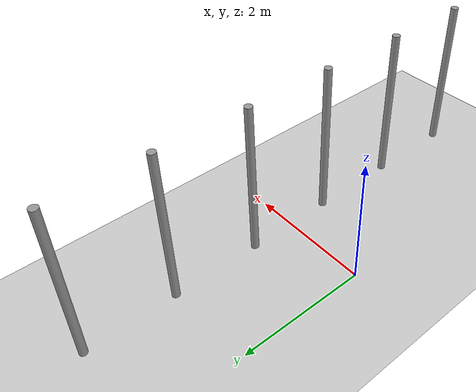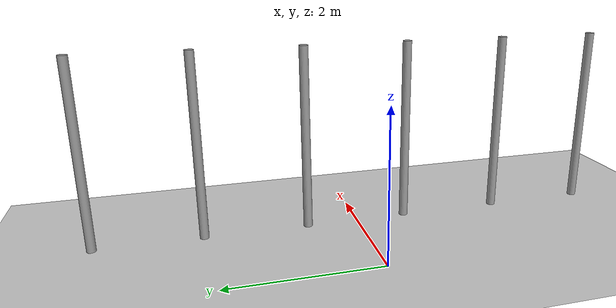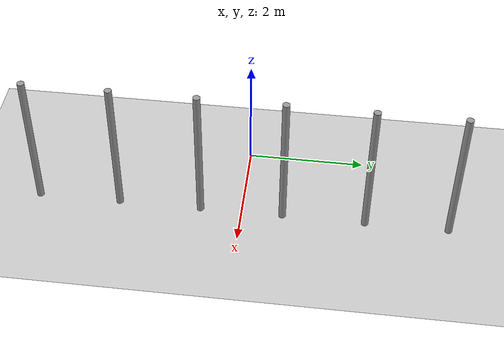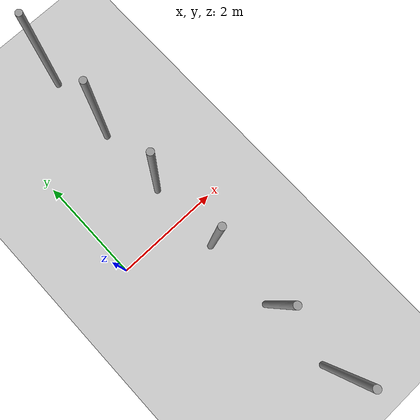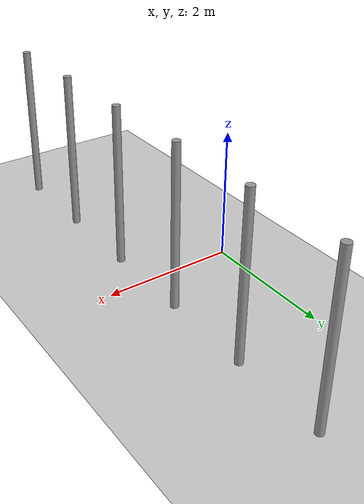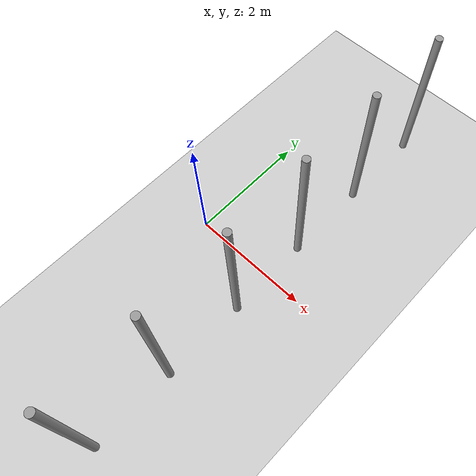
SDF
<sdf version="1.6">
 <world name="default">
  <light name="sun" type="directional">
   <pose>0 0 10 0 -0 0</pose>
   <diffuse>0.8 0.8 0.8 1</diffuse>
   <specular>0.2 0.2 0.2 1</specular>
   <attenuation>
    <range>1000</range>
    <constant>0.9</constant>
    <linear>0.01</linear>
    <quadratic>0.001</quadratic>
   </attenuation>
   <direction>-0.5 0.1 -0.9</direction>
  </light>
  <model name="ground_plane">
   <static>1</static>
   <link name="link">
    <collision name="collision">
     <geometry><plane><normal>0 0 1</normal><size>100 100</size></plane></geometry>
     <surface><friction><ode><mu>100</mu><mu2>50</mu2></ode></friction></surface>
    </collision>
    <visual name="visual">
     <cast_shadows>0</cast_shadows>
     <geometry><plane><normal>0 0 1</normal><size>100 100</size></plane></geometry>
     <material>
      <script><uri>file://media/materials/scripts/gazebo.material</uri><name>Gazebo/Grey</name></script>
     </material>
    </visual>
   </link>
  </model>
  <gravity>0 0 -9.8</gravity>
  <magnetic_field>6e-06 2.3e-05 -4.2e-05</magnetic_field>
  <atmosphere type="adiabatic"/>
  <physics name="default_physics" default="0" type="ode">
   <max_step_size>0.001</max_step_size>
   <real_time_factor>1</real_time_factor>
   <real_time_update_rate>1000</real_time_update_rate>
  </physics>
  <scene><ambient>0.4 0.4 0.4 1</ambient><background>0.7 0.7 0.7 1</background><shadows>1</shadows></scene>
  <spherical_coordinates>
   <surface_model>EARTH_WGS84</surface_model>
   <latitude_deg>0</latitude_deg>
   <longitude_deg>0</longitude_deg>
   <elevation>0</elevation>
   <heading_deg>0</heading_deg>
  </spherical_coordinates>
  <model name="pole">
   <link name="link_0">
    <inertial>
     <mass>0.0364582</mass>
     <inertia>
      <ixx>0.00312124</ixx>
      <ixy>0</ixy>
      <ixz>0</ixz>
      <iyy>0.00312124</iyy>
      <iyz>0</iyz>
      <izz>0.00016615</izz>
     </inertia>
    </inertial>
    <visual name="visual">
     <geometry><cylinder><radius>0.06</radius><length>2.5</length></cylinder></geometry>
     <material>
      <lighting>1</lighting>
      <script><uri>file://media/materials/scripts/gazebo.material</uri><name>Gazebo/Grey</name></script>
      <ambient>0.3 0.3 0.3 1</ambient>
      <diffuse>0.7 0.7 0.7 1</diffuse>
      <specular>0.01 0.01 0.01 1</specular>
      <emissive>0 0 0 1</emissive>
      <shader type="vertex"><normal_map>__default__</normal_map></shader>
     </material>
    </visual>
    <collision name="collision">
     <geometry><cylinder><radius>0.06</radius><length>2.5</length></cylinder></geometry>
     <surface>
      <friction>
       <ode><mu>1</mu><mu2>1</mu2><fdir1>0 0 0</fdir1><slip1>0</slip1><slip2>0</slip2></ode>
       <torsional>
        <coefficient>1</coefficient>
        <patch_radius>0</patch_radius>
        <surface_radius>0</surface_radius>
        <use_patch_radius>1</use_patch_radius>
        <ode><slip>0</slip></ode>
       </torsional>
      </friction>
      <bounce><restitution_coefficient>0</restitution_coefficient><threshold>1e+06</threshold></bounce>
      <contact>
       <collide_without_contact>0</collide_without_contact>
       <collide_without_contact_bitmask>1</collide_without_contact_bitmask>
       <collide_bitmask>1</collide_bitmask>
       <ode>
        <soft_cfm>0</soft_cfm>
        <soft_erp>0.2</soft_erp>
        <kp>1e+13</kp>
        <kd>1</kd>
        <max_vel>0.01</max_vel>
        <min_depth>0</min_depth>
       </ode>
       <bullet>
        <split_impulse>1</split_impulse>
        <split_impulse_penetration_threshold>-0.01</split_impulse_penetration_threshold>
        <soft_cfm>0</soft_cfm>
        <soft_erp>0.2</soft_erp>
        <kp>1e+13</kp>
        <kd>1</kd>
       </bullet>
      </contact>
     </surface>
    </collision>
   </link>
   <static>0</static>
   <pose>1.39236 0.701173 1.24999 -4.4e-05 -0.000283 0.04859</pose>
  </model>
  <model name="pole_0">
   <link name="link_0">
    <inertial>
     <mass>0.0364582</mass>
     <inertia>
      <ixx>0.00312124</ixx>
      <ixy>0</ixy>
      <ixz>0</ixz>
      <iyy>0.00312124</iyy>
      <iyz>0</iyz>
      <izz>0.00016615</izz>
     </inertia>
    </inertial>
    <visual name="visual">
     <geometry><cylinder><radius>0.06</radius><length>2.5</length></cylinder></geometry>
     <material>
      <lighting>1</lighting>
      <script><uri>file://media/materials/scripts/gazebo.material</uri><name>Gazebo/Grey</name></script>
      <ambient>0.3 0.3 0.3 1</ambient>
      <diffuse>0.7 0.7 0.7 1</diffuse>
      <specular>0.01 0.01 0.01 1</specular>
      <emissive>0 0 0 1</emissive>
      <shader type="vertex"><normal_map>__default__</normal_map></shader>
     </material>
    </visual>
    <collision name="collision">
     <geometry><cylinder><radius>0.06</radius><length>2.5</length></cylinder></geometry>
     <surface>
      <friction>
       <ode><mu>1</mu><mu2>1</mu2><fdir1>0 0 0</fdir1><slip1>0</slip1><slip2>0</slip2></ode>
       <torsional>
        <coefficient>1</coefficient>
        <patch_radius>0</patch_radius>
        <surface_radius>0</surface_radius>
        <use_patch_radius>1</use_patch_radius>
        <ode><slip>0</slip></ode>
       </torsional>
      </friction>
      <bounce><restitution_coefficient>0</restitution_coefficient><threshold>1e+06</threshold></bounce>
      <contact>
       <collide_without_contact>0</collide_without_contact>
       <collide_without_contact_bitmask>1</collide_without_contact_bitmask>
       <collide_bitmask>1</collide_bitmask>
       <ode>
        <soft_cfm>0</soft_cfm>
        <soft_erp>0.2</soft_erp>
        <kp>1e+13</kp>
        <kd>1</kd>
        <max_vel>0.01</max_vel>
        <min_depth>0</min_depth>
       </ode>
       <bullet>
        <split_impulse>1</split_impulse>
        <split_impulse_penetration_threshold>-0.01</split_impulse_penetration_threshold>
        <soft_cfm>0</soft_cfm>
        <soft_erp>0.2</soft_erp>
        <kp>1e+13</kp>
        <kd>1</kd>
       </bullet>
      </contact>
     </surface>
    </collision>
   </link>
   <static>0</static>
   <pose>1.40003 2.10017 1.24999 -1e-06 0 -0.002289</pose>
  </model>
  <model name="pole_1">
   <link name="link_0">
    <inertial>
     <mass>0.0364582</mass>
     <inertia>
      <ixx>0.00312124</ixx>
      <ixy>0</ixy>
      <ixz>0</ixz>
      <iyy>0.00312124</iyy>
      <iyz>0</iyz>
      <izz>0.00016615</izz>
     </inertia>
    </inertial>
    <visual name="visual">
     <geometry><cylinder><radius>0.06</radius><length>2.5</length></cylinder></geometry>
     <material>
      <lighting>1</lighting>
      <script><uri>file://media/materials/scripts/gazebo.material</uri><name>Gazebo/Grey</name></script>
      <ambient>0.3 0.3 0.3 1</ambient>
      <diffuse>0.7 0.7 0.7 1</diffuse>
      <specular>0.01 0.01 0.01 1</specular>
      <emissive>0 0 0 1</emissive>
      <shader type="vertex"><normal_map>__default__</normal_map></shader>
     </material>
    </visual>
    <collision name="collision">
     <geometry><cylinder><radius>0.06</radius><length>2.5</length></cylinder></geometry>
     <surface>
      <friction>
       <ode><mu>1</mu><mu2>1</mu2><fdir1>0 0 0</fdir1><slip1>0</slip1><slip2>0</slip2></ode>
       <torsional>
        <coefficient>1</coefficient>
        <patch_radius>0</patch_radius>
        <surface_radius>0</surface_radius>
        <use_patch_radius>1</use_patch_radius>
        <ode><slip>0</slip></ode>
       </torsional>
      </friction>
      <bounce><restitution_coefficient>0</restitution_coefficient><threshold>1e+06</threshold></bounce>
      <contact>
       <collide_without_contact>0</collide_without_contact>
       <collide_without_contact_bitmask>1</collide_without_contact_bitmask>
       <collide_bitmask>1</collide_bitmask>
       <ode>
        <soft_cfm>0</soft_cfm>
        <soft_erp>0.2</soft_erp>
        <kp>1e+13</kp>
        <kd>1</kd>
        <max_vel>0.01</max_vel>
        <min_depth>0</min_depth>
       </ode>
       <bullet>
        <split_impulse>1</split_impulse>
        <split_impulse_penetration_threshold>-0.01</split_impulse_penetration_threshold>
        <soft_cfm>0</soft_cfm>
        <soft_erp>0.2</soft_erp>
        <kp>1e+13</kp>
        <kd>1</kd>
       </bullet>
      </contact>
     </surface>
    </collision>
   </link>
   <static>0</static>
   <pose>1.40002 -0.699841 1.24999 0 0 -0.002631</pose>
  </model>
  <model name="pole_2">
   <link name="link_0">
    <inertial>
     <mass>0.0364582</mass>
     <inertia>
      <ixx>0.00312124</ixx>
      <ixy>0</ixy>
      <ixz>0</ixz>
      <iyy>0.00312124</iyy>
      <iyz>0</iyz>
      <izz>0.00016615</izz>
     </inertia>
    </inertial>
    <visual name="visual">
     <geometry><cylinder><radius>0.06</radius><length>2.5</length></cylinder></geometry>
     <material>
      <lighting>1</lighting>
      <script><uri>file://media/materials/scripts/gazebo.material</uri><name>Gazebo/Grey</name></script>
      <ambient>0.3 0.3 0.3 1</ambient>
      <diffuse>0.7 0.7 0.7 1</diffuse>
      <specular>0.01 0.01 0.01 1</specular>
      <emissive>0 0 0 1</emissive>
      <shader type="vertex"><normal_map>__default__</normal_map></shader>
     </material>
    </visual>
    <collision name="collision">
     <geometry><cylinder><radius>0.06</radius><length>2.5</length></cylinder></geometry>
     <surface>
      <friction>
       <ode><mu>1</mu><mu2>1</mu2><fdir1>0 0 0</fdir1><slip1>0</slip1><slip2>0</slip2></ode>
       <torsional>
        <coefficient>1</coefficient>
        <patch_radius>0</patch_radius>
        <surface_radius>0</surface_radius>
        <use_patch_radius>1</use_patch_radius>
        <ode><slip>0</slip></ode>
       </torsional>
      </friction>
      <bounce><restitution_coefficient>0</restitution_coefficient><threshold>1e+06</threshold></bounce>
      <contact>
       <collide_without_contact>0</collide_without_contact>
       <collide_without_contact_bitmask>1</collide_without_contact_bitmask>
       <collide_bitmask>1</collide_bitmask>
       <ode>
        <soft_cfm>0</soft_cfm>
        <soft_erp>0.2</soft_erp>
        <kp>1e+13</kp>
        <kd>1</kd>
        <max_vel>0.01</max_vel>
        <min_depth>0</min_depth>
       </ode>
       <bullet>
        <split_impulse>1</split_impulse>
        <split_impulse_penetration_threshold>-0.01</split_impulse_penetration_threshold>
        <soft_cfm>0</soft_cfm>
        <soft_erp>0.2</soft_erp>
        <kp>1e+13</kp>
        <kd>1</kd>
       </bullet>
      </contact>
     </surface>
    </collision>
   </link>
   <static>0</static>
   <pose>1.40001 -2.09994 1.24999 -0 1e-06 -0.002013</pose>
  </model>
  <model name="pole_3">
   <link name="link_0">
    <inertial>
     <mass>0.0364582</mass>
     <inertia>
      <ixx>0.00312124</ixx>
      <ixy>0</ixy>
      <ixz>0</ixz>
      <iyy>0.00312124</iyy>
      <iyz>0</iyz>
      <izz>0.00016615</izz>
     </inertia>
    </inertial>
    <visual name="visual">
     <geometry><cylinder><radius>0.06</radius><length>2.5</length></cylinder></geometry>
     <material>
      <lighting>1</lighting>
      <script><uri>file://media/materials/scripts/gazebo.material</uri><name>Gazebo/Grey</name></script>
      <ambient>0.3 0.3 0.3 1</ambient>
      <diffuse>0.7 0.7 0.7 1</diffuse>
      <specular>0.01 0.01 0.01 1</specular>
      <emissive>0 0 0 1</emissive>
      <shader type="vertex"><normal_map>__default__</normal_map></shader>
     </material>
    </visual>
    <collision name="collision">
     <geometry><cylinder><radius>0.06</radius><length>2.5</length></cylinder></geometry>
     <surface>
      <friction>
       <ode><mu>1</mu><mu2>1</mu2><fdir1>0 0 0</fdir1><slip1>0</slip1><slip2>0</slip2></ode>
       <torsional>
        <coefficient>1</coefficient>
        <patch_radius>0</patch_radius>
        <surface_radius>0</surface_radius>
        <use_patch_radius>1</use_patch_radius>
        <ode><slip>0</slip></ode>
       </torsional>
      </friction>
      <bounce><restitution_coefficient>0</restitution_coefficient><threshold>1e+06</threshold></bounce>
      <contact>
       <collide_without_contact>0</collide_without_contact>
       <collide_without_contact_bitmask>1</collide_without_contact_bitmask>
       <collide_bitmask>1</collide_bitmask>
       <ode>
        <soft_cfm>0</soft_cfm>
        <soft_erp>0.2</soft_erp>
        <kp>1e+13</kp>
        <kd>1</kd>
        <max_vel>0.01</max_vel>
        <min_depth>0</min_depth>
       </ode>
       <bullet>
        <split_impulse>1</split_impulse>
        <split_impulse_penetration_threshold>-0.01</split_impulse_penetration_threshold>
        <soft_cfm>0</soft_cfm>
        <soft_erp>0.2</soft_erp>
        <kp>1e+13</kp>
        <kd>1</kd>
       </bullet>
      </contact>
     </surface>
    </collision>
   </link>
   <static>0</static>
   <pose>1.40003 3.50019 1.25 -1e-06 1e-06 -0.000793</pose>
  </model>
  <model name="pole_4">
   <link name="link_0">
    <inertial>
     <mass>0.0364582</mass>
     <inertia>
      <ixx>0.00312124</ixx>
      <ixy>0</ixy>
      <ixz>0</ixz>
      <iyy>0.00312124</iyy>
      <iyz>0</iyz>
      <izz>0.00016615</izz>
     </inertia>
    </inertial>
    <visual name="visual">
     <geometry><cylinder><radius>0.06</radius><length>2.5</length></cylinder></geometry>
     <material>
      <lighting>1</lighting>
      <script><uri>file://media/materials/scripts/gazebo.material</uri><name>Gazebo/Grey</name></script>
      <ambient>0.3 0.3 0.3 1</ambient>
      <diffuse>0.7 0.7 0.7 1</diffuse>
      <specular>0.01 0.01 0.01 1</specular>
      <emissive>0 0 0 1</emissive>
      <shader type="vertex"><normal_map>__default__</normal_map></shader>
     </material>
    </visual>
    <collision name="collision">
     <geometry><cylinder><radius>0.06</radius><length>2.5</length></cylinder></geometry>
     <surface>
      <friction>
       <ode><mu>1</mu><mu2>1</mu2><fdir1>0 0 0</fdir1><slip1>0</slip1><slip2>0</slip2></ode>
       <torsional>
        <coefficient>1</coefficient>
        <patch_radius>0</patch_radius>
        <surface_radius>0</surface_radius>
        <use_patch_radius>1</use_patch_radius>
        <ode><slip>0</slip></ode>
       </torsional>
      </friction>
      <bounce><restitution_coefficient>0</restitution_coefficient><threshold>1e+06</threshold></bounce>
      <contact>
       <collide_without_contact>0</collide_without_contact>
       <collide_without_contact_bitmask>1</collide_without_contact_bitmask>
       <collide_bitmask>1</collide_bitmask>
       <ode>
        <soft_cfm>0</soft_cfm>
        <soft_erp>0.2</soft_erp>
        <kp>1e+13</kp>
        <kd>1</kd>
        <max_vel>0.01</max_vel>
        <min_depth>0</min_depth>
       </ode>
       <bullet>
        <split_impulse>1</split_impulse>
        <split_impulse_penetration_threshold>-0.01</split_impulse_penetration_threshold>
        <soft_cfm>0</soft_cfm>
        <soft_erp>0.2</soft_erp>
        <kp>1e+13</kp>
        <kd>1</kd>
       </bullet>
      </contact>
     </surface>
    </collision>
   </link>
   <static>0</static>
   <pose>1.4 -3.49995 1.24999 -1e-06 1e-06 5.5e-05</pose>
  </model>
 </world>
</sdf>
